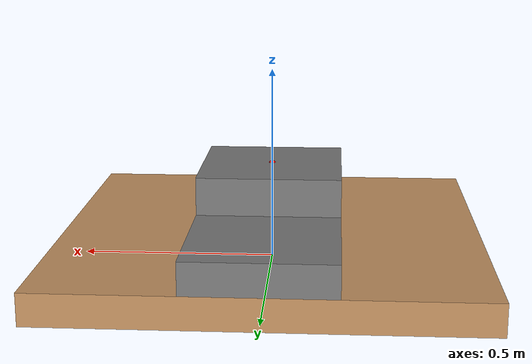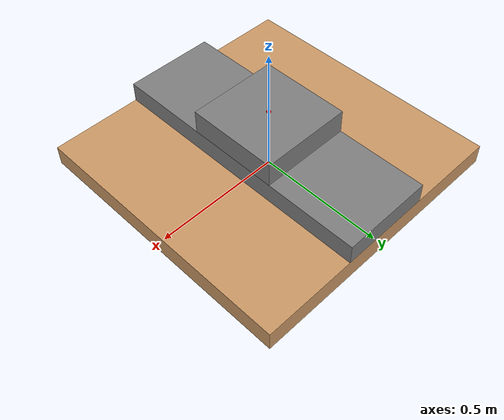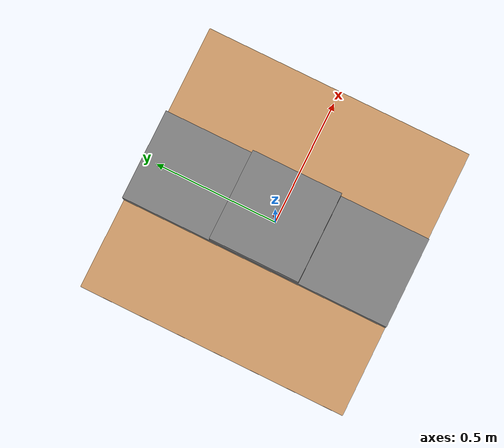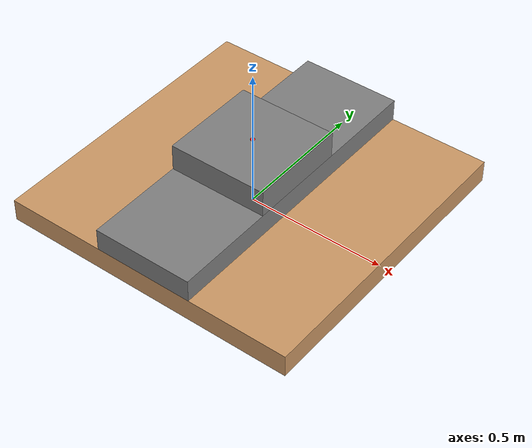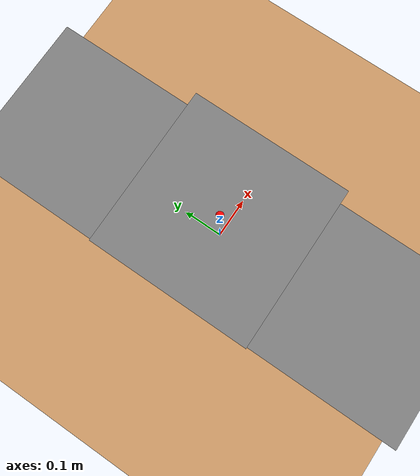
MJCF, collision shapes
<mujoco model="iiwa_socket">
     <compiler convexhull="true" angle="radian" meshdir="environment_parts/" />
  <option integrator="implicitfast" timestep="0.004" jacobian="dense">
    <flag multiccd="enable"/>
  </option>
  <size nkey="1"/>
  <visual>
    <global azimuth="-120" elevation="-20"/>
        <quality shadowsize="2048"/>
        <headlight ambient="0.3 0.3 0.3" diffuse="0.6 0.6 0.6" specular="0.1 0.1 0.1"/>
    </visual>

      <!-- Define the assets -->
    <asset>
        <mesh name="iiwa_socket" file="iiwa_socket/assets/iiwa_socket.stl"/>
    </asset>

    <!-- Define the world body -->
    <worldbody>
        <!-- Load the hammer mesh and place it at the origin -->
        <body name="iiwa_socket" pos="0 0 0">
            <geom type="mesh" mesh="iiwa_socket" contype="0" conaffinity="0" group="0" rgba="0.4 0.4 0.4 1"/>
             <site name="robot_attach" pos="0 0 0.25" size="0.01" rgba="1 0 0 1" group="0"/>
             <geom name="collision_bottom" type="box"  contype="1" conaffinity="1" size="0.54 0.54 0.04" pos="0 0 0.04" rgba="0.8 0.6 0.4 1" group="3"/>
             <geom name="collision_middle" type="box"  contype="1" conaffinity="1" size="0.18 0.54 0.04" pos="0 0 0.12" group="3"/>
             <geom name="collision_top" type="box"  contype="1" conaffinity="1" size="0.18 0.18 0.0475" pos="0 0 0.2075" group="3"/>
        </body>

    </worldbody>
</mujoco>
